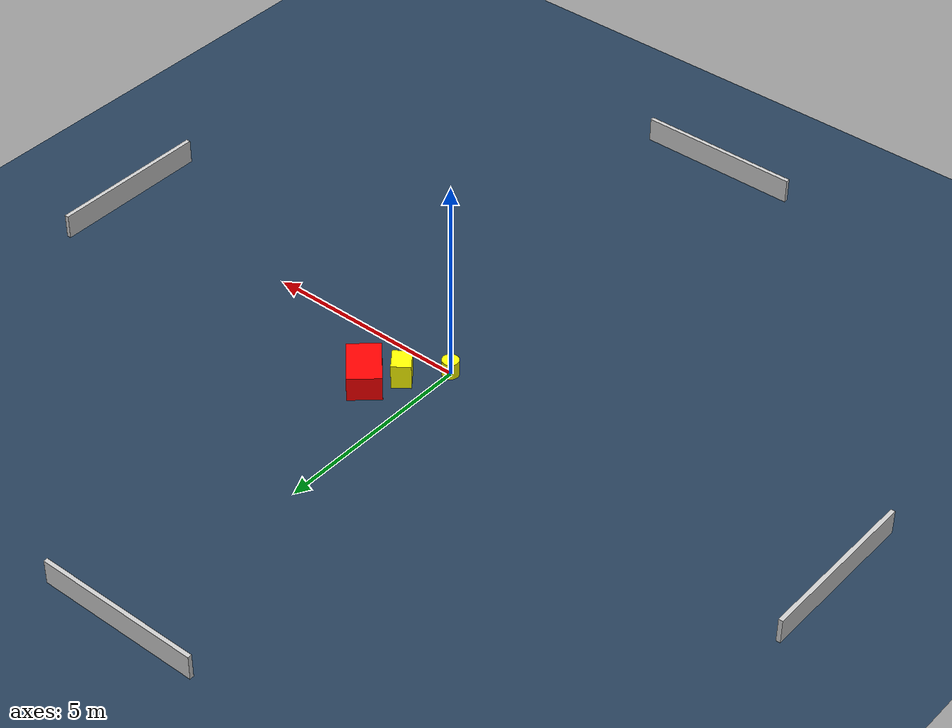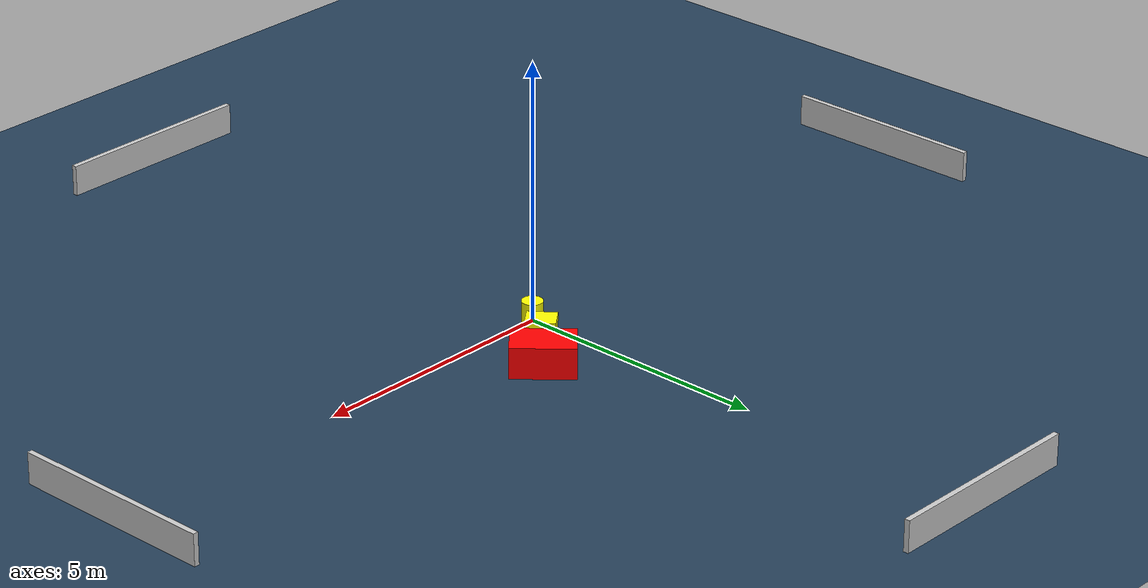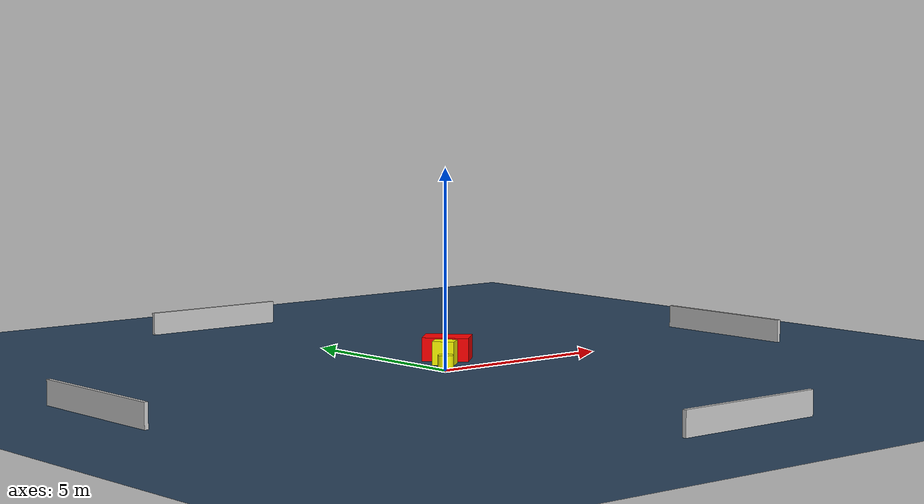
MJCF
<?xml version="1.0" ?>
<mujoco model="generated_environment">
  <option timestep="0.01" integrator="RK4" cone="elliptic"/>
  <default>
    <geom density="1"/>
  </default>
  <asset>
    <texture builtin="gradient" height="3072" name="skybox" rgb1="0.3 0.5 0.7" rgb2="0 0 0" type="skybox" width="512"/>
    <texture builtin="checker" height="300" name="groundplane" rgb1="0.2 0.3 0.4" rgb2="0.1 0.2 0.3" type="2d" width="300"/>
    <material name="groundplane" reflectance="0.2" texrepeat="5 5" texture="groundplane"/>
  </asset>
  <worldbody>
    <light dir="0 0 -1" directional="true" pos="0 0 1.5"/>
    <geom condim="3" friction="0.5 0.005 0.001" material="groundplane" name="floor" pos="0 0 0" size="0 0 0.05" type="plane"/>
    <body name="walls">
      <geom name="wall_1" condim="4" pos="-10.0 0.0 0.3" rgba="0.800000011920929 0.800000011920929 0.800000011920929 1.0" size="0.05 2.0 0.3" type="box"/>
      <geom name="wall_2" condim="4" pos="10.0 0.0 0.3" rgba="0.800000011920929 0.800000011920929 0.800000011920929 1.0" size="0.05 2.0 0.3" type="box"/>
      <geom name="wall_3" condim="4" pos="0.0 -10.0 0.3" rgba="0.800000011920929 0.800000011920929 0.800000011920929 1.0" size="2.0 0.05 0.3" type="box"/>
      <geom name="wall_4" condim="4" pos="0.0 10.0 0.3" rgba="0.800000011920929 0.800000011920929 0.800000011920929 1.0" size="2.0 0.05 0.3" type="box"/>
    </body>
    <body name="robot">
      <joint name="joint_x" type="slide" pos="0 0 0" axis="1 0 0"/>
      <joint name="joint_y" type="slide" pos="0 0 0" axis="0 1 0"/>
      <geom name="robot" type="cylinder" pos="0.0 0.0 0.2" size="0.2 0.2 0.0" mass="5.0" friction="1.0 0.005 0.0001" condim="4" rgba="1.0 1.0 0.0 1.0"/>
    </body>
    <body name="obstacle_1_movable">
      <geom name="obstacle_1_movable" condim="4" pos="0.6785780470768772 0.8365399244790955 0.3" euler="0 0 307.4152943122258" friction="0.0 0.005 0.001" rgba="1.0 1.0 0.0 1.0" size="0.2794624976463499 0.22662679909814132 0.3" type="box" mass="0.1"/>
      <joint type="free"/>
    </body>
    <body name="obstacle_2_static">
      <geom name="obstacle_2_static" condim="4" pos="1.2515558652858056 1.4195385482528005 0.3" euler="0 0 222.0728465681696" friction="0.0 0.005 0.001" rgba="1.0 0.0 0.0 1.0" size="0.39321232681989293 0.5975393090960432 0.3" type="box"/>
    </body>
  </worldbody>
  <actuator>
    <motor name="actuator_x" joint="joint_x" gear="1" ctrlrange="-1 1"/>
    <motor name="actuator_y" joint="joint_y" gear="1" ctrlrange="-1 1"/>
  </actuator>
</mujoco>
